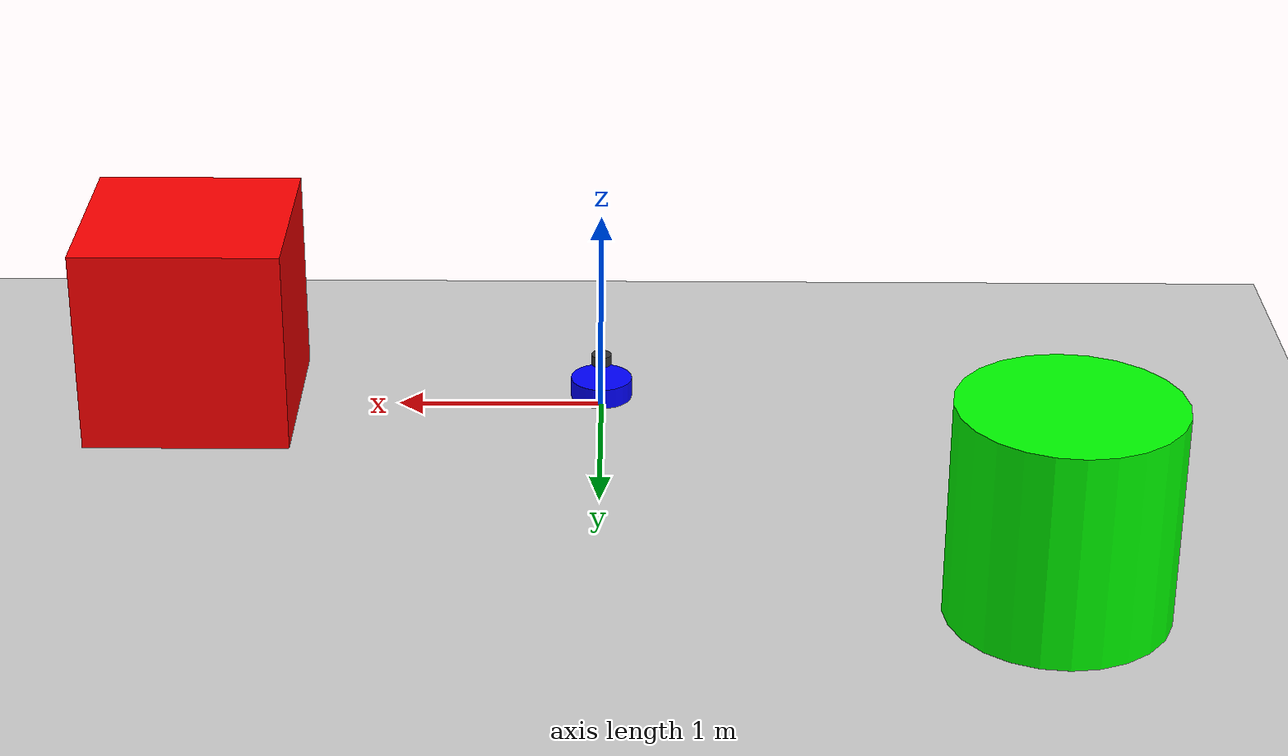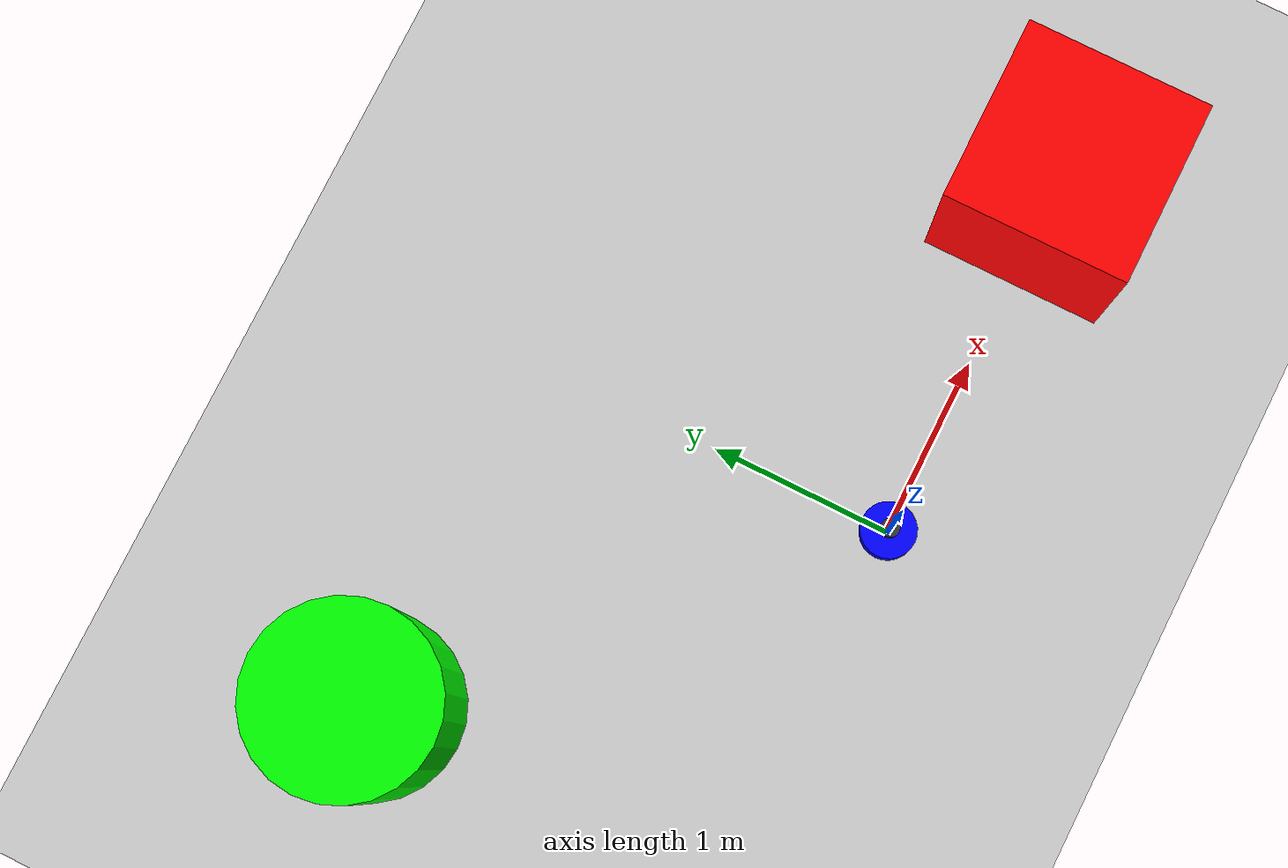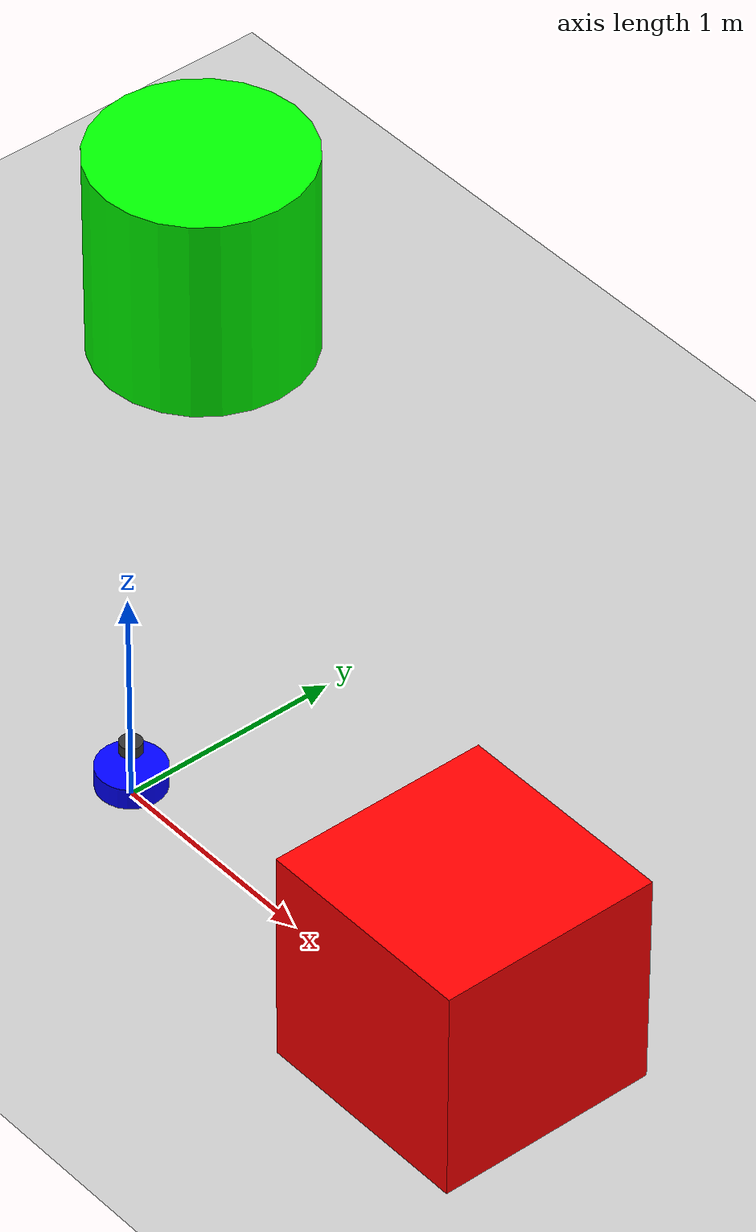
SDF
<?xml version="1.0" ?>
<sdf version="1.6">
  <world name="lidar_test_world">

    <!-- Physics -->
    <physics name="1ms" type="ignored">
      <max_step_size>0.001</max_step_size>
      <real_time_factor>1.0</real_time_factor>
    </physics>

    <!-- Plugins -->
    <plugin filename="gz-sim-physics-system" name="gz::sim::systems::Physics"></plugin>
    <plugin filename="gz-sim-scene-broadcaster-system" name="gz::sim::systems::SceneBroadcaster"></plugin>
    <plugin filename="gz-sim-sensors-system" name="gz::sim::systems::Sensors">
      <render_engine>ogre2</render_engine>
    </plugin>

    <!-- Light -->
    <light type="directional" name="sun">
      <cast_shadows>true</cast_shadows>
      <pose>0 0 10 0 0 0</pose>
      <diffuse>0.8 0.8 0.8 1</diffuse>
      <specular>0.2 0.2 0.2 1</specular>
      <direction>-0.5 0.1 -0.9</direction>
    </light>

    <!-- Ground -->
    <model name="ground_plane">
      <static>true</static>
      <link name="link">
        <collision name="collision">
          <geometry>
            <plane>
              <normal>0 0 1</normal>
              <size>100 100</size>
            </plane>
          </geometry>
        </collision>
        <visual name="visual">
          <geometry>
            <plane>
              <normal>0 0 1</normal>
              <size>100 100</size>
            </plane>
          </geometry>
          <material>
            <ambient>0.8 0.8 0.8 1</ambient>
            <diffuse>0.8 0.8 0.8 1</diffuse>
          </material>
        </visual>
      </link>
    </model>

    <!-- Red Box -->
    <model name="red_box">
      <pose>2 0 0.5 0 0 0</pose>
      <static>true</static>
      <link name="link">
        <collision name="collision">
          <geometry>
            <box>
              <size>1 1 1</size>
            </box>
          </geometry>
        </collision>
        <visual name="visual">
          <geometry>
            <box>
              <size>1 1 1</size>
            </box>
          </geometry>
          <material>
            <ambient>1 0 0 1</ambient>
            <diffuse>1 0 0 1</diffuse>
          </material>
        </visual>
      </link>
    </model>

    <!-- Green Cylinder -->
    <model name="green_cylinder">
      <pose>-2 2 0.5 0 0 0</pose>
      <static>true</static>
      <link name="link">
        <collision name="collision">
          <geometry>
            <cylinder>
              <radius>0.5</radius>
              <length>1</length>
            </cylinder>
          </geometry>
        </collision>
        <visual name="visual">
          <geometry>
            <cylinder>
              <radius>0.5</radius>
              <length>1</length>
            </cylinder>
          </geometry>
          <material>
            <ambient>0 1 0 1</ambient>
            <diffuse>0 1 0 1</diffuse>
          </material>
        </visual>
      </link>
    </model>

    <!-- Robot with LiDAR -->
    <model name="lidar_robot">
      <pose>0 0 0.1 0 0 0</pose>

      <!-- Robot base -->
      <link name="base_link">
        <collision name="collision">
          <geometry>
            <cylinder>
              <radius>0.15</radius>
              <length>0.1</length>
            </cylinder>
          </geometry>
        </collision>
        <visual name="visual">
          <geometry>
            <cylinder>
              <radius>0.15</radius>
              <length>0.1</length>
            </cylinder>
          </geometry>
          <material>
            <ambient>0 0 1 1</ambient>
            <diffuse>0 0 1 1</diffuse>
          </material>
        </visual>
        <inertial>
          <mass>1.0</mass>
          <inertia>
            <ixx>0.01</ixx>
            <iyy>0.01</iyy>
            <izz>0.01</izz>
          </inertia>
        </inertial>
      </link>

      <!-- LiDAR sensor -->
      <link name="lidar_link">
        <pose>0 0 0.15 0 0 0</pose>
        <collision name="collision">
          <geometry>
            <cylinder>
              <radius>0.05</radius>
              <length>0.05</length>
            </cylinder>
          </geometry>
        </collision>
        <visual name="visual">
          <geometry>
            <cylinder>
              <radius>0.05</radius>
              <length>0.05</length>
            </cylinder>
          </geometry>
          <material>
            <ambient>0.2 0.2 0.2 1</ambient>
            <diffuse>0.2 0.2 0.2 1</diffuse>
          </material>
        </visual>
        <inertial>
          <mass>0.1</mass>
          <inertia>
            <ixx>0.001</ixx>
            <iyy>0.001</iyy>
            <izz>0.001</izz>
          </inertia>
        </inertial>

        <!-- LiDAR sensor -->
        <sensor name="lidar" type="gpu_lidar">
          <pose>0 0 0 0 0 0</pose>
          <topic>scan</topic>
          <update_rate>10</update_rate>
          <lidar>
            <scan>
              <horizontal>
                <samples>360</samples>
                <resolution>1</resolution>
                <min_angle>-3.14159</min_angle>
                <max_angle>3.14159</max_angle>
              </horizontal>
            </scan>
            <range>
              <min>0.1</min>
              <max>10.0</max>
              <resolution>0.01</resolution>
            </range>
            <noise>
              <type>gaussian</type>
              <mean>0.0</mean>
              <stddev>0.01</stddev>
            </noise>
          </lidar>
          <always_on>1</always_on>
          <visualize>true</visualize>
        </sensor>
      </link>

      <!-- Connect base to lidar -->
      <joint name="lidar_joint" type="fixed">
        <parent>base_link</parent>
        <child>lidar_link</child>
      </joint>

    </model>

  </world>
</sdf>
